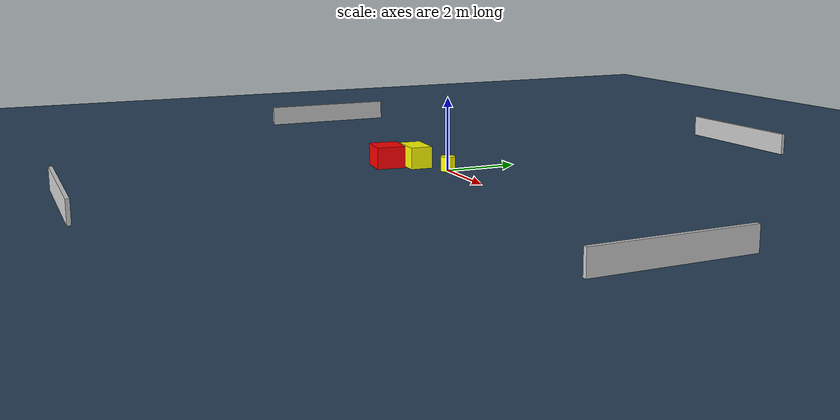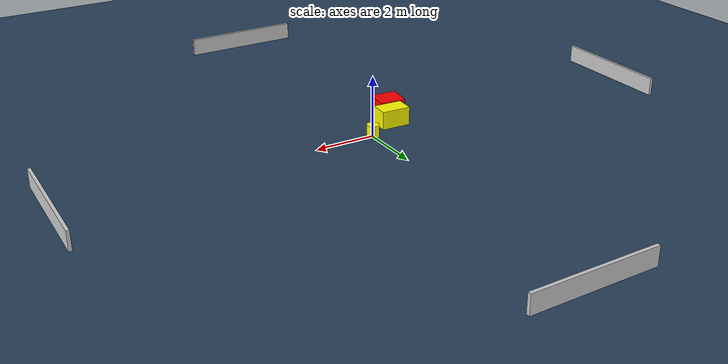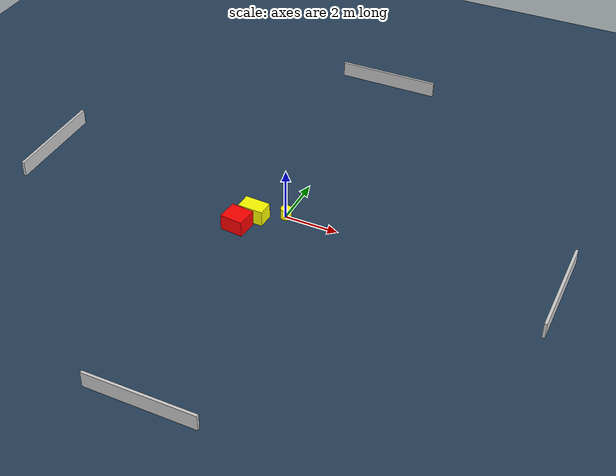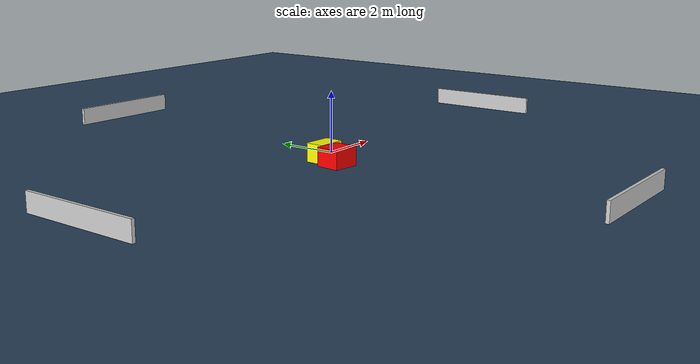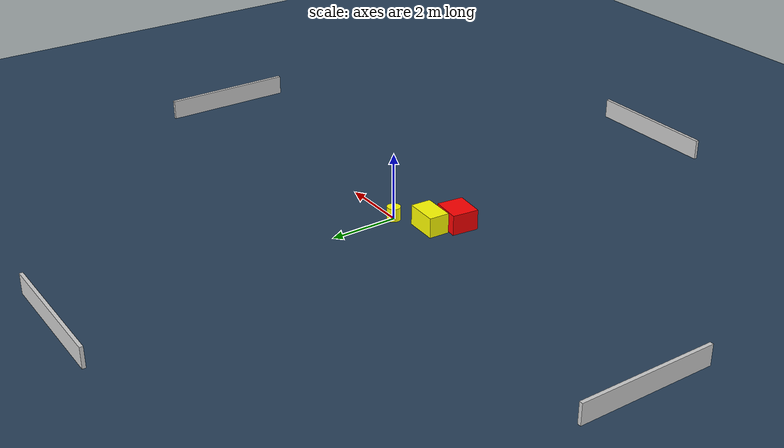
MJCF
<?xml version="1.0" ?>
<mujoco model="generated_environment">
  <option timestep="0.01" integrator="RK4" cone="elliptic"/>
  <default>
    <geom density="1"/>
  </default>
  <asset>
    <texture builtin="gradient" height="3072" name="skybox" rgb1="0.3 0.5 0.7" rgb2="0 0 0" type="skybox" width="512"/>
    <texture builtin="checker" height="300" name="groundplane" rgb1="0.2 0.3 0.4" rgb2="0.1 0.2 0.3" type="2d" width="300"/>
    <material name="groundplane" reflectance="0.2" texrepeat="5 5" texture="groundplane"/>
  </asset>
  <worldbody>
    <light dir="0 0 -1" directional="true" pos="0 0 1.5"/>
    <geom condim="3" friction="0.5 0.005 0.001" material="groundplane" name="floor" pos="0 0 0" size="0 0 0.05" type="plane"/>
    <body name="walls">
      <geom name="wall_1" condim="4" pos="-10.0 0.0 0.3" rgba="0.800000011920929 0.800000011920929 0.800000011920929 1.0" size="0.05 2.0 0.3" type="box"/>
      <geom name="wall_2" condim="4" pos="10.0 0.0 0.3" rgba="0.800000011920929 0.800000011920929 0.800000011920929 1.0" size="0.05 2.0 0.3" type="box"/>
      <geom name="wall_3" condim="4" pos="0.0 -10.0 0.3" rgba="0.800000011920929 0.800000011920929 0.800000011920929 1.0" size="2.0 0.05 0.3" type="box"/>
      <geom name="wall_4" condim="4" pos="0.0 10.0 0.3" rgba="0.800000011920929 0.800000011920929 0.800000011920929 1.0" size="2.0 0.05 0.3" type="box"/>
    </body>
    <body name="robot">
      <joint name="joint_x" type="slide" pos="0 0 0" axis="1 0 0"/>
      <joint name="joint_y" type="slide" pos="0 0 0" axis="0 1 0"/>
      <geom name="robot" type="cylinder" pos="0.0 0.0 0.2" size="0.2 0.2 0.0" mass="5.0" friction="1.0 0.005 0.0001" condim="4" rgba="1.0 1.0 0.0 1.0"/>
    </body>
    <body name="obstacle_1_movable">
      <geom name="obstacle_1_movable" condim="4" pos="-1.0188194114224962 -0.5148345824322885 0.3" euler="0 0 267.2936114172609" friction="0.0 0.005 0.001" rgba="1.0 1.0 0.0 1.0" size="0.30130119110160447 0.4778471587080011 0.3" type="box" mass="0.1"/>
      <joint type="free"/>
    </body>
    <body name="obstacle_2_static">
      <geom name="obstacle_2_static" condim="4" pos="-1.3322408856084753 -1.2415565724896476 0.3" euler="0 0 173.81215843128743" friction="0.0 0.005 0.001" rgba="1.0 0.0 0.0 1.0" size="0.430884248165045 0.3933129219707364 0.3" type="box"/>
    </body>
  </worldbody>
  <actuator>
    <motor name="actuator_x" joint="joint_x" gear="1" ctrlrange="-1 1"/>
    <motor name="actuator_y" joint="joint_y" gear="1" ctrlrange="-1 1"/>
  </actuator>
</mujoco>
